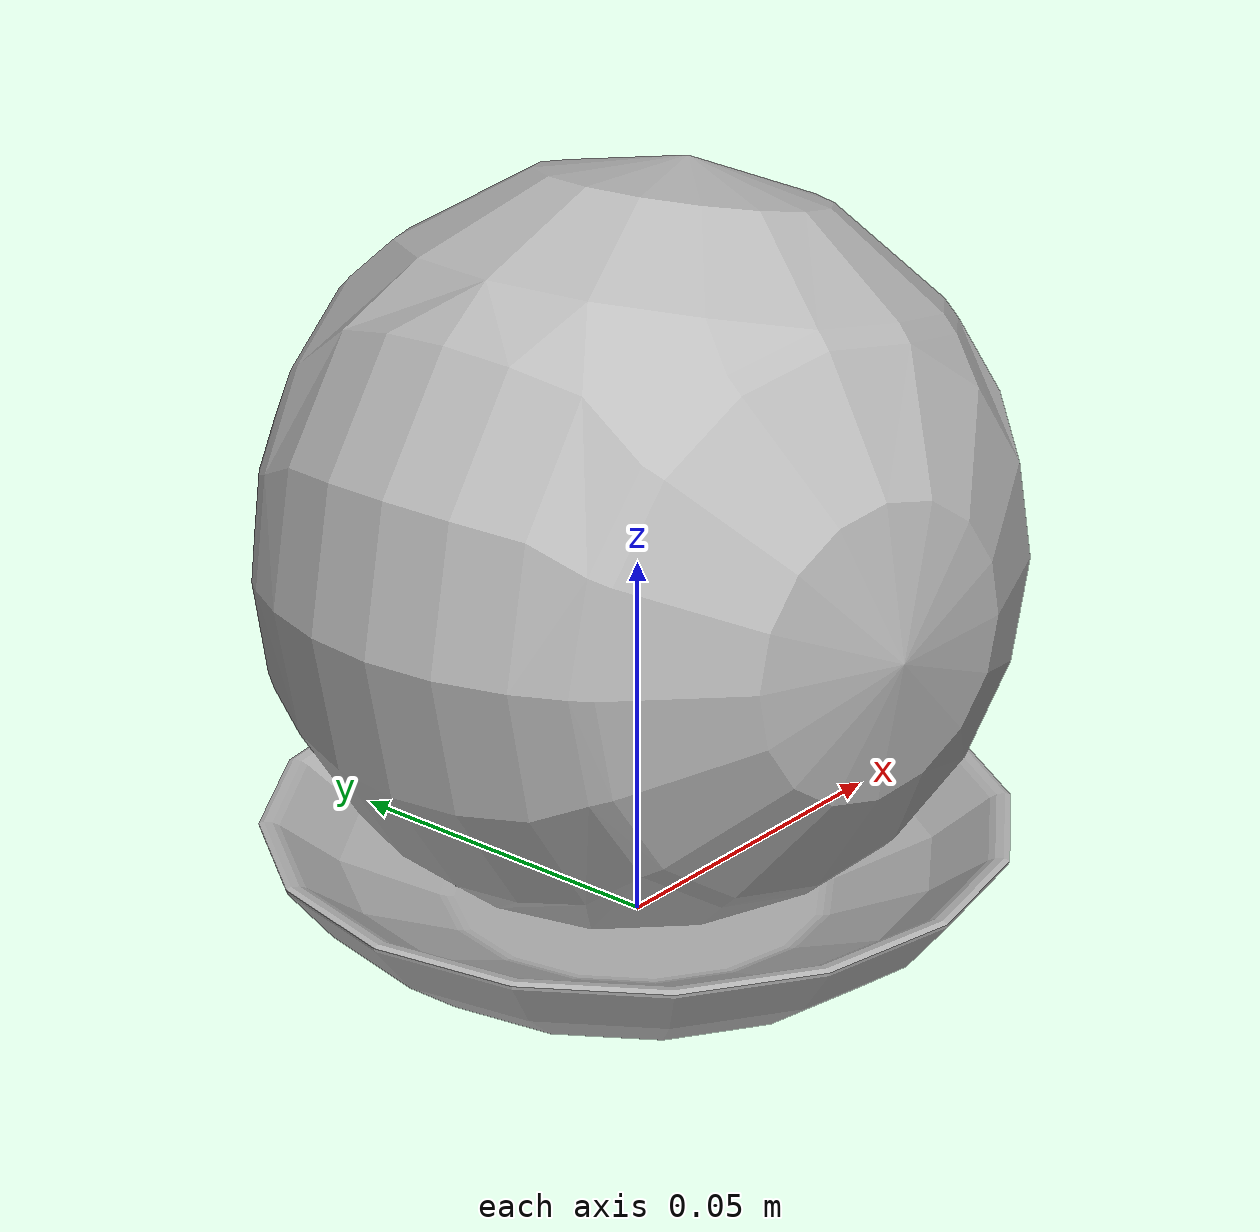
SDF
<?xml version='1.0'?>
<sdf version='1.4'>
  <model name='s__1856'>
    <pose>0 0 0 0 0 0</pose>
    <static>true</static>
    <link name='link'>
      <collision name='collision'>
        <pose>0 0 0 0 0 0</pose>
        <geometry>
          <box>
            <size>0.1 0.1 2</size>
          </box>
        </geometry>
      </collision>
      <visual name='visual'>
        <pose>0 0 0 0 0 0</pose>
        <geometry>
          <mesh><uri>model://s__1856/s__1856.dae</uri></mesh>
        </geometry>
      </visual>
    </link>
  </model>
</sdf>
